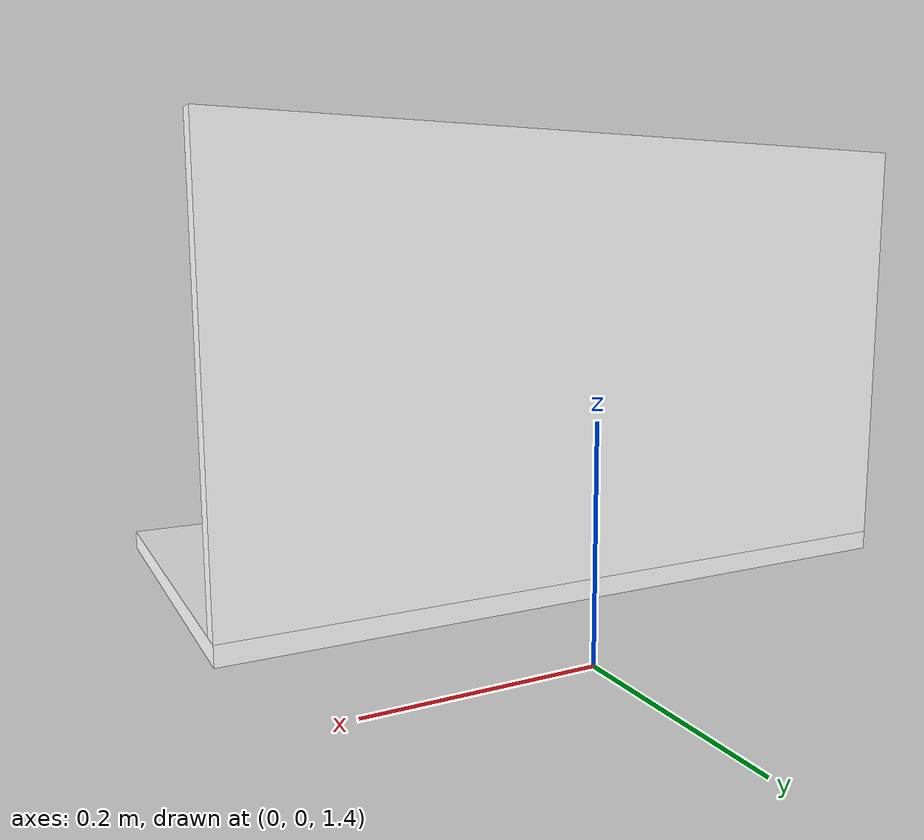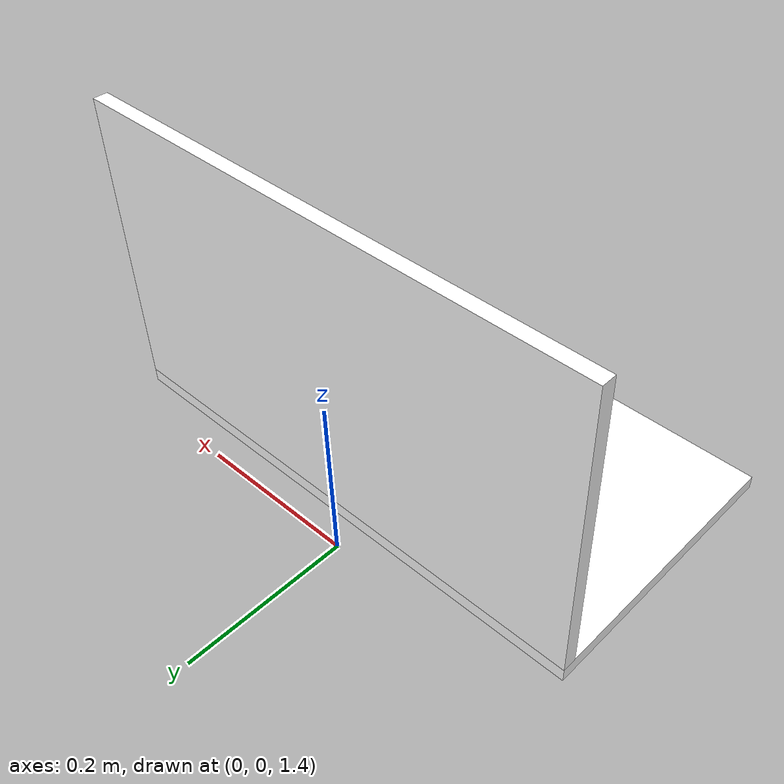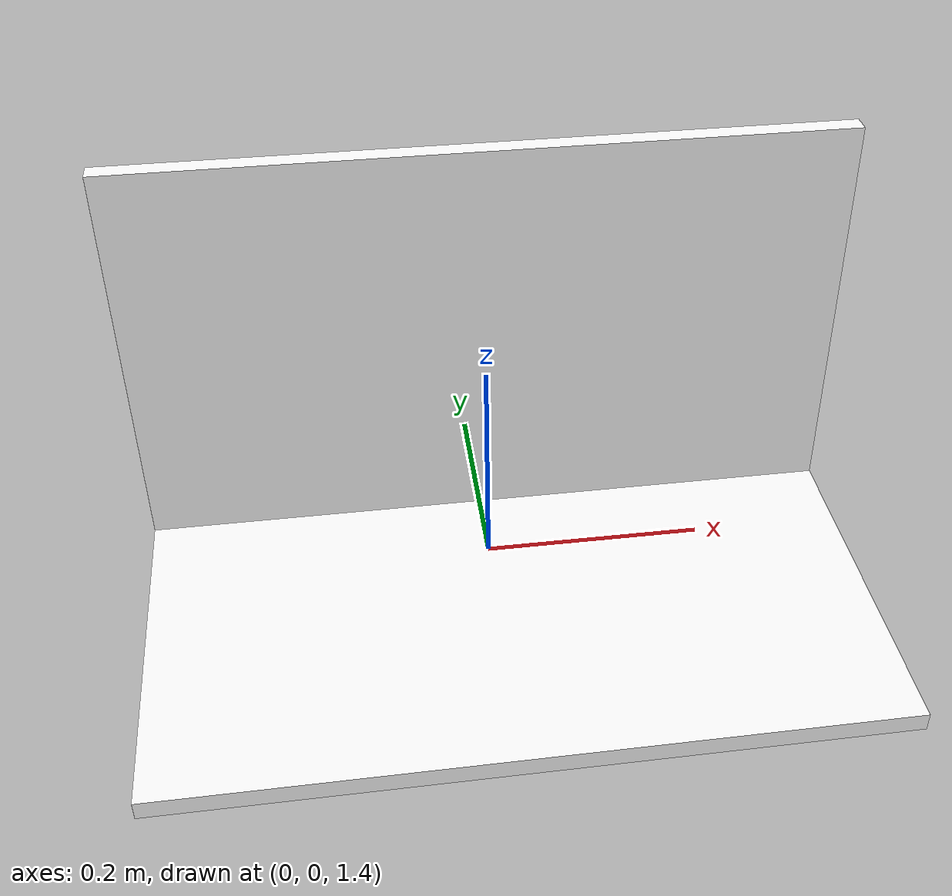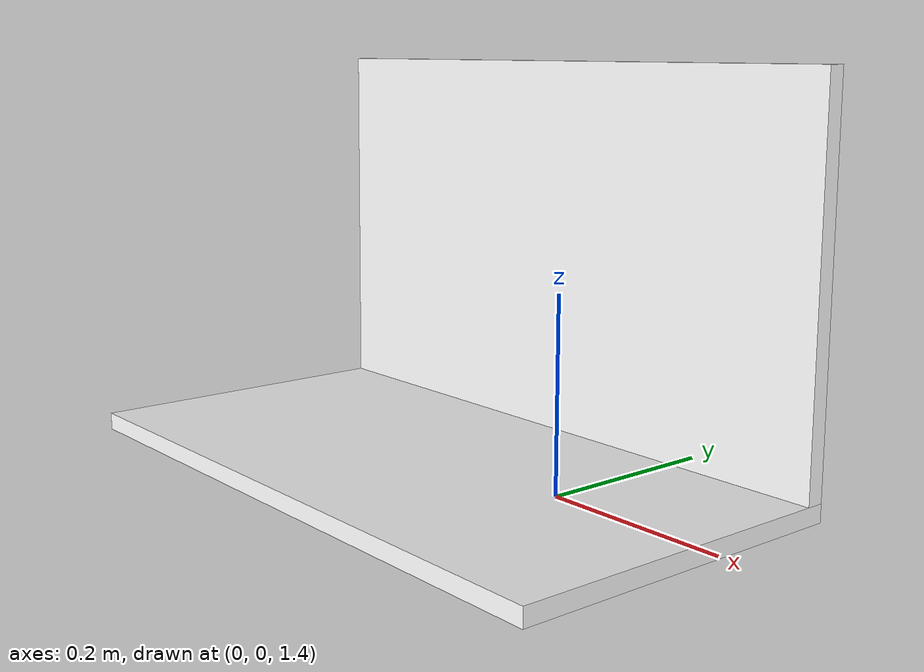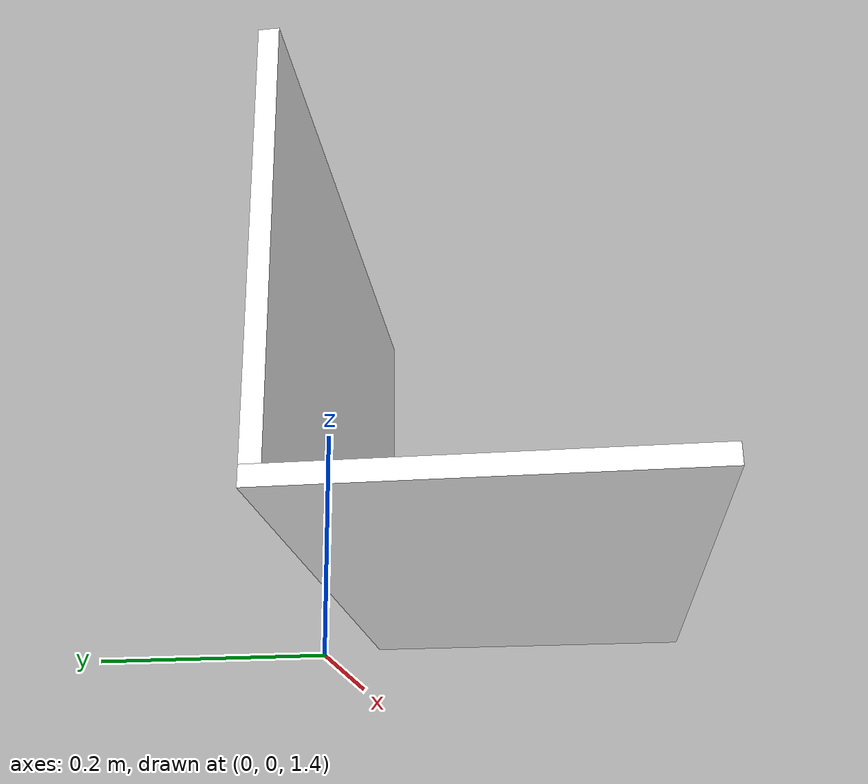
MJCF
<?xml version="1.0" encoding="utf-8"?>
<mujoco model="open_shelf_600">
  <compiler angle="radian" meshdir="assets" texturedir="assets" autolimits="true"/>
  <asset>
    <material name="shelf" shininess="0.1"/>
  </asset>
  <default>
    <default class="open_shelf_600">
      <geom solimp="0.998 0.998 0.001" solref="0.004 1"/>
    </default>
  </default>
  <worldbody>
    <body name="open_shelf_600" childclass="open_shelf_600">
      <body name="wall_cabinet_600_offset" pos="0 0 1.466">
        <geom pos="0 -0.008 0.18" size="0.3 0.172 0.008" type="box" material="shelf" euler="1.5708 0 0"/>
        <body name="shelf">
          <geom pos="0 -0.16 0" size="0.3 0.16 0.008" type="box" material="shelf" euler="0 0 0"/>
        </body>
      </body>
    </body>
  </worldbody>
</mujoco>
